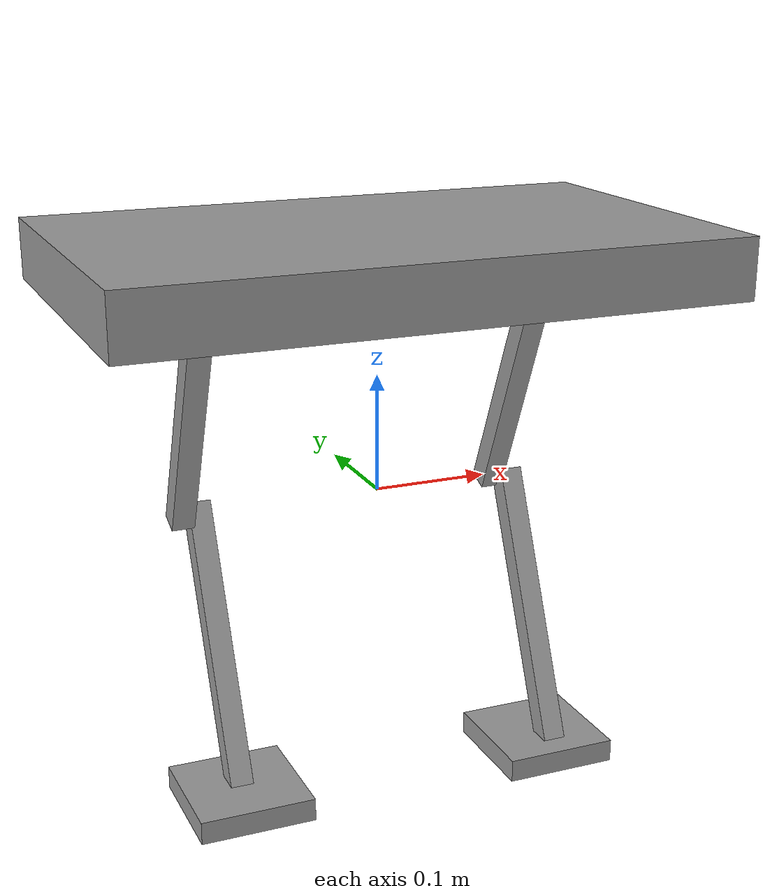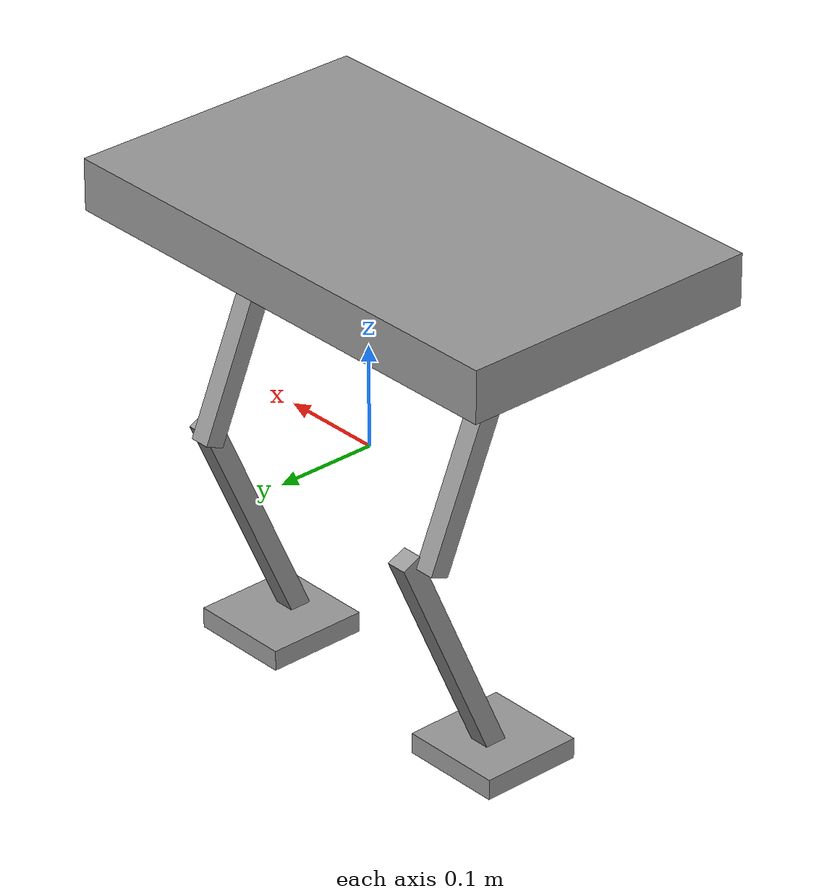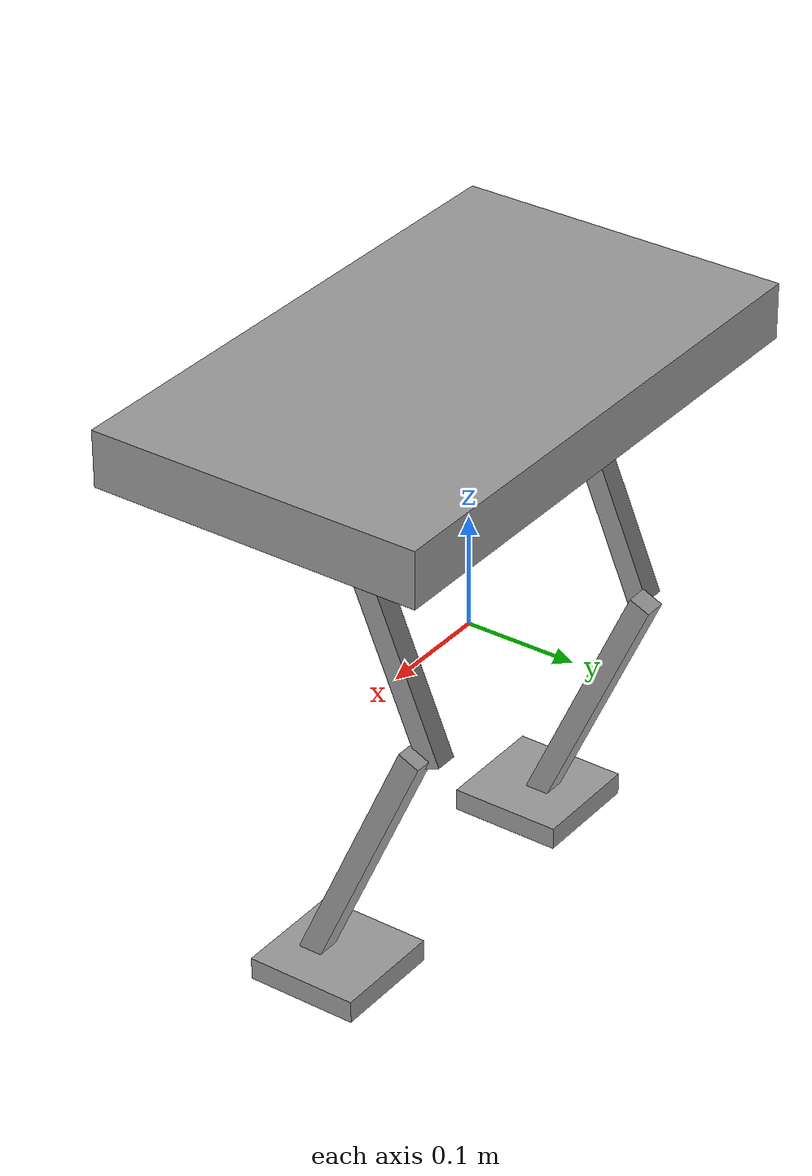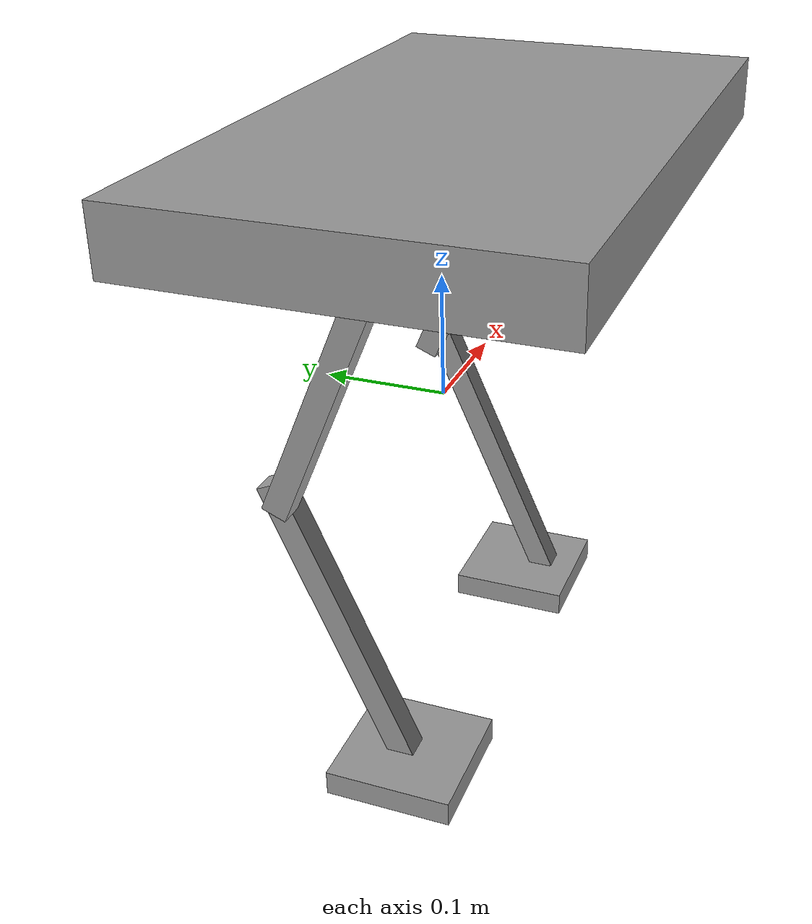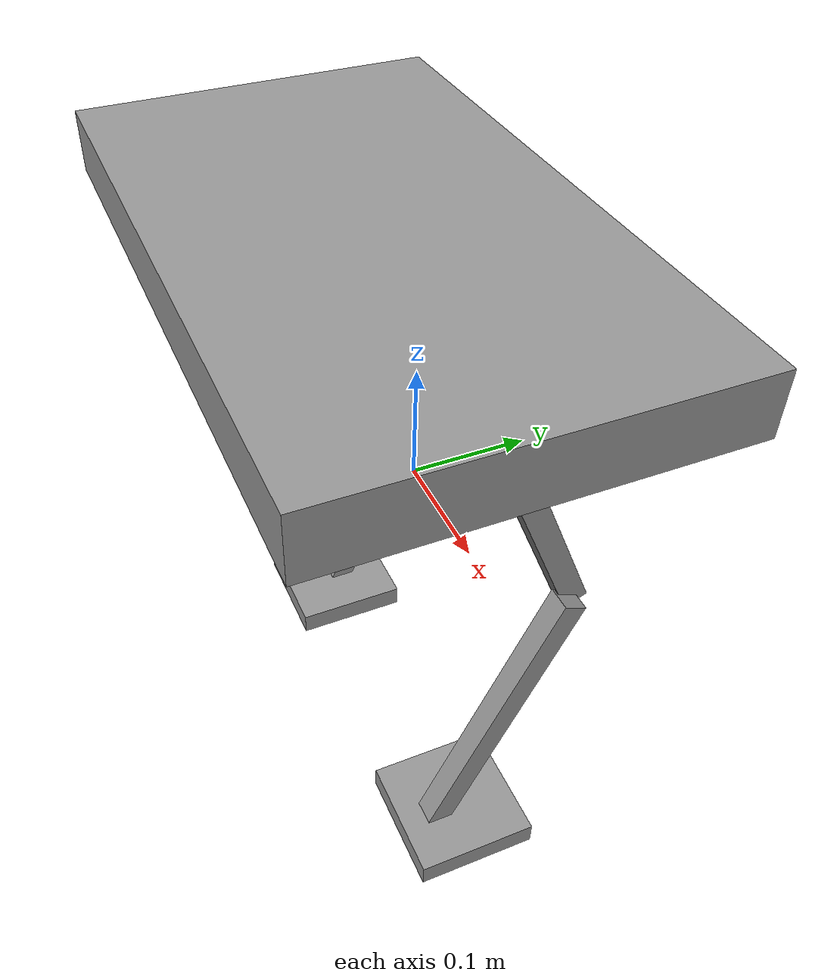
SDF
<?xml version='1.0'?>
<sdf version='1.7'>
  <model name='humanoidRobot'>
    <link name='link_0'>
      <inertial>
        <mass>1</mass>
        <inertia>
          <ixx>0.166667</ixx>
          <ixy>0</ixy>
          <ixz>0</ixz>
          <iyy>0.166667</iyy>
          <iyz>0</iyz>
          <izz>0.166667</izz>
        </inertia>
        <pose>0 0 0 0 -0 0</pose>
      </inertial>
      <pose>-0.013681 -0.03226 0.204424 0 -0 0</pose>
      <gravity>1</gravity>
      <self_collide>0</self_collide>
      <kinematic>0</kinematic>
      <enable_wind>0</enable_wind>
      <visual name='visual'>
        <pose>0 0 0 0 -0 0</pose>
        <geometry>
          <box>
            <size>0.5 0.3 0.05</size>
          </box>
        </geometry>
        <material>
          <lighting>1</lighting>
          <script>
            <uri>file://media/materials/scripts/gazebo.material</uri>
            <name>Gazebo/Grey</name>
          </script>
          <shader type='pixel'>
            <normal_map>__default__</normal_map>
          </shader>
          <ambient>0.3 0.3 0.3 1</ambient>
          <diffuse>0.7 0.7 0.7 1</diffuse>
          <specular>0.01 0.01 0.01 1</specular>
          <emissive>0 0 0 1</emissive>
        </material>
        <transparency>0</transparency>
        <cast_shadows>1</cast_shadows>
      </visual>
      <collision name='collision'>
        <laser_retro>0</laser_retro>
        <max_contacts>10</max_contacts>
        <pose>0 0 0 0 -0 0</pose>
        <geometry>
          <box>
            <size>0.5 0.3 0.02</size>
          </box>
        </geometry>
        <surface>
          <friction>
            <ode>
              <mu>1</mu>
              <mu2>1</mu2>
              <fdir1>0 0 0</fdir1>
              <slip1>0</slip1>
              <slip2>0</slip2>
            </ode>
            <torsional>
              <coefficient>1</coefficient>
              <patch_radius>0</patch_radius>
              <surface_radius>0</surface_radius>
              <use_patch_radius>1</use_patch_radius>
              <ode>
                <slip>0</slip>
              </ode>
            </torsional>
          </friction>
          <bounce>
            <restitution_coefficient>0</restitution_coefficient>
            <threshold>1e+06</threshold>
          </bounce>
          <contact>
            <collide_without_contact>0</collide_without_contact>
            <collide_without_contact_bitmask>1</collide_without_contact_bitmask>
            <collide_bitmask>1</collide_bitmask>
            <ode>
              <soft_cfm>0</soft_cfm>
              <soft_erp>0.2</soft_erp>
              <kp>1e+13</kp>
              <kd>1</kd>
              <max_vel>0.01</max_vel>
              <min_depth>0</min_depth>
            </ode>
            <bullet>
              <split_impulse>1</split_impulse>
              <split_impulse_penetration_threshold>-0.01</split_impulse_penetration_threshold>
              <soft_cfm>0</soft_cfm>
              <soft_erp>0.2</soft_erp>
              <kp>1e+13</kp>
              <kd>1</kd>
            </bullet>
          </contact>
        </surface>
      </collision>
    </link>
    <link name='link_1'>
      <inertial>
        <mass>1</mass>
        <inertia>
          <ixx>0.166667</ixx>
          <ixy>0</ixy>
          <ixz>0</ixz>
          <iyy>0.166667</iyy>
          <iyz>0</iyz>
          <izz>0.166667</izz>
        </inertia>
        <pose>0 0 0 0 -0 0</pose>
      </inertial>
      <pose>0.138675 -0.024286 0.185616 0.399501 -0 0</pose>
      <gravity>1</gravity>
      <self_collide>0</self_collide>
      <kinematic>0</kinematic>
      <enable_wind>0</enable_wind>
      <visual name='visual'>
        <pose>0 0 -0.11 0 -0 0</pose>
        <geometry>
          <box>
            <size>0.02 0.02 0.25</size>
          </box>
        </geometry>
        <material>
          <lighting>1</lighting>
          <script>
            <uri>file://media/materials/scripts/gazebo.material</uri>
            <name>Gazebo/Grey</name>
          </script>
          <shader type='pixel'>
            <normal_map>__default__</normal_map>
          </shader>
          <ambient>0.3 0.3 0.3 1</ambient>
          <diffuse>0.7 0.7 0.7 1</diffuse>
          <specular>0.01 0.01 0.01 1</specular>
          <emissive>0 0 0 1</emissive>
        </material>
        <transparency>0</transparency>
        <cast_shadows>1</cast_shadows>
      </visual>
      <collision name='collision'>
        <laser_retro>0</laser_retro>
        <max_contacts>10</max_contacts>
        <pose>0 0 -0.11 0 -0 0</pose>
        <geometry>
          <box>
            <size>0.02 0.02 0.25</size>
          </box>
        </geometry>
        <surface>
          <friction>
            <ode>
              <mu>1</mu>
              <mu2>1</mu2>
              <fdir1>0 0 0</fdir1>
              <slip1>0</slip1>
              <slip2>0</slip2>
            </ode>
            <torsional>
              <coefficient>1</coefficient>
              <patch_radius>0</patch_radius>
              <surface_radius>0</surface_radius>
              <use_patch_radius>1</use_patch_radius>
              <ode>
                <slip>0</slip>
              </ode>
            </torsional>
          </friction>
          <bounce>
            <restitution_coefficient>0</restitution_coefficient>
            <threshold>1e+06</threshold>
          </bounce>
          <contact>
            <collide_without_contact>0</collide_without_contact>
            <collide_without_contact_bitmask>1</collide_without_contact_bitmask>
            <collide_bitmask>1</collide_bitmask>
            <ode>
              <soft_cfm>0</soft_cfm>
              <soft_erp>0.2</soft_erp>
              <kp>1e+13</kp>
              <kd>1</kd>
              <max_vel>0.01</max_vel>
              <min_depth>0</min_depth>
            </ode>
            <bullet>
              <split_impulse>1</split_impulse>
              <split_impulse_penetration_threshold>-0.01</split_impulse_penetration_threshold>
              <soft_cfm>0</soft_cfm>
              <soft_erp>0.2</soft_erp>
              <kp>1e+13</kp>
              <kd>1</kd>
            </bullet>
          </contact>
        </surface>
      </collision>
    </link>
    <link name='link_1_clone'>
      <inertial>
        <mass>1</mass>
        <inertia>
          <ixx>0.166667</ixx>
          <ixy>0</ixy>
          <ixz>0</ixz>
          <iyy>0.166667</iyy>
          <iyz>0</iyz>
          <izz>0.166667</izz>
        </inertia>
        <pose>0 0 0 0 -0 0</pose>
      </inertial>
      <pose>0.153036 0.05166 -0.034143 -0.417344 0 0</pose>
      <gravity>1</gravity>
      <self_collide>0</self_collide>
      <kinematic>0</kinematic>
      <enable_wind>0</enable_wind>
      <visual name='visual'>
        <pose>0 0 -0.11 0 -0 0</pose>
        <geometry>
          <box>
            <size>0.02 0.02 0.25</size>
          </box>
        </geometry>
        <material>
          <lighting>1</lighting>
          <script>
            <uri>file://media/materials/scripts/gazebo.material</uri>
            <name>Gazebo/Grey</name>
          </script>
          <shader type='pixel'>
            <normal_map>__default__</normal_map>
          </shader>
          <ambient>0.3 0.3 0.3 1</ambient>
          <diffuse>0.7 0.7 0.7 1</diffuse>
          <specular>0.01 0.01 0.01 1</specular>
          <emissive>0 0 0 1</emissive>
        </material>
        <transparency>0</transparency>
        <cast_shadows>1</cast_shadows>
      </visual>
      <collision name='collision'>
        <laser_retro>0</laser_retro>
        <max_contacts>10</max_contacts>
        <pose>0 0 -0.11 0 -0 0</pose>
        <geometry>
          <box>
            <size>0.02 0.02 0.25</size>
          </box>
        </geometry>
        <surface>
          <friction>
            <ode>
              <mu>1</mu>
              <mu2>1</mu2>
              <fdir1>0 0 0</fdir1>
              <slip1>0</slip1>
              <slip2>0</slip2>
            </ode>
            <torsional>
              <coefficient>1</coefficient>
              <patch_radius>0</patch_radius>
              <surface_radius>0</surface_radius>
              <use_patch_radius>1</use_patch_radius>
              <ode>
                <slip>0</slip>
              </ode>
            </torsional>
          </friction>
          <bounce>
            <restitution_coefficient>0</restitution_coefficient>
            <threshold>1e+06</threshold>
          </bounce>
          <contact>
            <collide_without_contact>0</collide_without_contact>
            <collide_without_contact_bitmask>1</collide_without_contact_bitmask>
            <collide_bitmask>1</collide_bitmask>
            <ode>
              <soft_cfm>0</soft_cfm>
              <soft_erp>0.2</soft_erp>
              <kp>1e+13</kp>
              <kd>1</kd>
              <max_vel>0.01</max_vel>
              <min_depth>0</min_depth>
            </ode>
            <bullet>
              <split_impulse>1</split_impulse>
              <split_impulse_penetration_threshold>-0.01</split_impulse_penetration_threshold>
              <soft_cfm>0</soft_cfm>
              <soft_erp>0.2</soft_erp>
              <kp>1e+13</kp>
              <kd>1</kd>
            </bullet>
          </contact>
        </surface>
      </collision>
    </link>
    <link name='link_1_clone_0'>
      <inertial>
        <mass>1</mass>
        <inertia>
          <ixx>0.166667</ixx>
          <ixy>0</ixy>
          <ixz>0</ixz>
          <iyy>0.166667</iyy>
          <iyz>0</iyz>
          <izz>0.166667</izz>
        </inertia>
        <pose>0 0 0 0 -0 0</pose>
      </inertial>
      <pose>-0.154988 -0.02403 0.185616 0.399501 -0 0</pose>
      <gravity>1</gravity>
      <self_collide>0</self_collide>
      <kinematic>0</kinematic>
      <enable_wind>0</enable_wind>
      <visual name='visual'>
        <pose>0 0 -0.11 0 -0 0</pose>
        <geometry>
          <box>
            <size>0.02 0.02 0.25</size>
          </box>
        </geometry>
        <material>
          <lighting>1</lighting>
          <script>
            <uri>file://media/materials/scripts/gazebo.material</uri>
            <name>Gazebo/Grey</name>
          </script>
          <shader type='pixel'>
            <normal_map>__default__</normal_map>
          </shader>
          <ambient>0.3 0.3 0.3 1</ambient>
          <diffuse>0.7 0.7 0.7 1</diffuse>
          <specular>0.01 0.01 0.01 1</specular>
          <emissive>0 0 0 1</emissive>
        </material>
        <transparency>0</transparency>
        <cast_shadows>1</cast_shadows>
      </visual>
      <collision name='collision'>
        <laser_retro>0</laser_retro>
        <max_contacts>10</max_contacts>
        <pose>0 0 -0.11 0 -0 0</pose>
        <geometry>
          <box>
            <size>0.02 0.02 0.25</size>
          </box>
        </geometry>
        <surface>
          <friction>
            <ode>
              <mu>1</mu>
              <mu2>1</mu2>
              <fdir1>0 0 0</fdir1>
              <slip1>0</slip1>
              <slip2>0</slip2>
            </ode>
            <torsional>
              <coefficient>1</coefficient>
              <patch_radius>0</patch_radius>
              <surface_radius>0</surface_radius>
              <use_patch_radius>1</use_patch_radius>
              <ode>
                <slip>0</slip>
              </ode>
            </torsional>
          </friction>
          <bounce>
            <restitution_coefficient>0</restitution_coefficient>
            <threshold>1e+06</threshold>
          </bounce>
          <contact>
            <collide_without_contact>0</collide_without_contact>
            <collide_without_contact_bitmask>1</collide_without_contact_bitmask>
            <collide_bitmask>1</collide_bitmask>
            <ode>
              <soft_cfm>0</soft_cfm>
              <soft_erp>0.2</soft_erp>
              <kp>1e+13</kp>
              <kd>1</kd>
              <max_vel>0.01</max_vel>
              <min_depth>0</min_depth>
            </ode>
            <bullet>
              <split_impulse>1</split_impulse>
              <split_impulse_penetration_threshold>-0.01</split_impulse_penetration_threshold>
              <soft_cfm>0</soft_cfm>
              <soft_erp>0.2</soft_erp>
              <kp>1e+13</kp>
              <kd>1</kd>
            </bullet>
          </contact>
        </surface>
      </collision>
    </link>
    <link name='link_1_clone_clone'>
      <inertial>
        <mass>1</mass>
        <inertia>
          <ixx>0.166667</ixx>
          <ixy>0</ixy>
          <ixz>0</ixz>
          <iyy>0.166667</iyy>
          <iyz>0</iyz>
          <izz>0.166667</izz>
        </inertia>
        <pose>0 0 0 0 -0 0</pose>
      </inertial>
      <pose>-0.136141 0.07538 -0.034143 -0.417344 0 0</pose>
      <gravity>1</gravity>
      <self_collide>0</self_collide>
      <kinematic>0</kinematic>
      <enable_wind>0</enable_wind>
      <visual name='visual'>
        <pose>0 0 -0.11 0 -0 0</pose>
        <geometry>
          <box>
            <size>0.02 0.02 0.25</size>
          </box>
        </geometry>
        <material>
          <lighting>1</lighting>
          <script>
            <uri>file://media/materials/scripts/gazebo.material</uri>
            <name>Gazebo/Grey</name>
          </script>
          <shader type='pixel'>
            <normal_map>__default__</normal_map>
          </shader>
          <ambient>0.3 0.3 0.3 1</ambient>
          <diffuse>0.7 0.7 0.7 1</diffuse>
          <specular>0.01 0.01 0.01 1</specular>
          <emissive>0 0 0 1</emissive>
        </material>
        <transparency>0</transparency>
        <cast_shadows>1</cast_shadows>
      </visual>
      <collision name='collision'>
        <laser_retro>0</laser_retro>
        <max_contacts>10</max_contacts>
        <pose>0 0 -0.11 0 -0 0</pose>
        <geometry>
          <box>
            <size>0.02 0.02 0.25</size>
          </box>
        </geometry>
        <surface>
          <friction>
            <ode>
              <mu>1</mu>
              <mu2>1</mu2>
              <fdir1>0 0 0</fdir1>
              <slip1>0</slip1>
              <slip2>0</slip2>
            </ode>
            <torsional>
              <coefficient>1</coefficient>
              <patch_radius>0</patch_radius>
              <surface_radius>0</surface_radius>
              <use_patch_radius>1</use_patch_radius>
              <ode>
                <slip>0</slip>
              </ode>
            </torsional>
          </friction>
          <bounce>
            <restitution_coefficient>0</restitution_coefficient>
            <threshold>1e+06</threshold>
          </bounce>
          <contact>
            <collide_without_contact>0</collide_without_contact>
            <collide_without_contact_bitmask>1</collide_without_contact_bitmask>
            <collide_bitmask>1</collide_bitmask>
            <ode>
              <soft_cfm>0</soft_cfm>
              <soft_erp>0.2</soft_erp>
              <kp>1e+13</kp>
              <kd>1</kd>
              <max_vel>0.01</max_vel>
              <min_depth>0</min_depth>
            </ode>
            <bullet>
              <split_impulse>1</split_impulse>
              <split_impulse_penetration_threshold>-0.01</split_impulse_penetration_threshold>
              <soft_cfm>0</soft_cfm>
              <soft_erp>0.2</soft_erp>
              <kp>1e+13</kp>
              <kd>1</kd>
            </bullet>
          </contact>
        </surface>
      </collision>
    </link>
    <link name='link_2'>
      <inertial>
        <mass>1</mass>
        <inertia>
          <ixx>0.166667</ixx>
          <ixy>0</ixy>
          <ixz>0</ixz>
          <iyy>0.166667</iyy>
          <iyz>0</iyz>
          <izz>0.166667</izz>
        </inertia>
        <pose>0 0 0 0 -0 0</pose>
      </inertial>
      <pose>0.149239 -0.024175 -0.255408 0 -0 0</pose>
      <gravity>1</gravity>
      <self_collide>0</self_collide>
      <kinematic>0</kinematic>
      <enable_wind>0</enable_wind>
      <visual name='visual'>
        <pose>0 0 0 0 -0 0</pose>
        <geometry>
          <box>
            <size>0.1 0.1 0.02</size>
          </box>
        </geometry>
        <material>
          <lighting>1</lighting>
          <script>
            <uri>file://media/materials/scripts/gazebo.material</uri>
            <name>Gazebo/Grey</name>
          </script>
          <shader type='pixel'>
            <normal_map>__default__</normal_map>
          </shader>
          <ambient>0.3 0.3 0.3 1</ambient>
          <diffuse>0.7 0.7 0.7 1</diffuse>
          <specular>0.01 0.01 0.01 1</specular>
          <emissive>0 0 0 1</emissive>
        </material>
        <transparency>0</transparency>
        <cast_shadows>1</cast_shadows>
      </visual>
      <collision name='collision'>
        <laser_retro>0</laser_retro>
        <max_contacts>10</max_contacts>
        <pose>0 0 0 0 -0 0</pose>
        <geometry>
          <box>
            <size>0.1 0.1 0.02</size>
          </box>
        </geometry>
        <surface>
          <friction>
            <ode>
              <mu>1</mu>
              <mu2>1</mu2>
              <fdir1>0 0 0</fdir1>
              <slip1>0</slip1>
              <slip2>0</slip2>
            </ode>
            <torsional>
              <coefficient>1</coefficient>
              <patch_radius>0</patch_radius>
              <surface_radius>0</surface_radius>
              <use_patch_radius>1</use_patch_radius>
              <ode>
                <slip>0</slip>
              </ode>
            </torsional>
          </friction>
          <bounce>
            <restitution_coefficient>0</restitution_coefficient>
            <threshold>1e+06</threshold>
          </bounce>
          <contact>
            <collide_without_contact>0</collide_without_contact>
            <collide_without_contact_bitmask>1</collide_without_contact_bitmask>
            <collide_bitmask>1</collide_bitmask>
            <ode>
              <soft_cfm>0</soft_cfm>
              <soft_erp>0.2</soft_erp>
              <kp>1e+13</kp>
              <kd>1</kd>
              <max_vel>0.01</max_vel>
              <min_depth>0</min_depth>
            </ode>
            <bullet>
              <split_impulse>1</split_impulse>
              <split_impulse_penetration_threshold>-0.01</split_impulse_penetration_threshold>
              <soft_cfm>0</soft_cfm>
              <soft_erp>0.2</soft_erp>
              <kp>1e+13</kp>
              <kd>1</kd>
            </bullet>
          </contact>
        </surface>
      </collision>
    </link>
    <link name='link_2_clone'>
      <inertial>
        <mass>1</mass>
        <inertia>
          <ixx>0.166667</ixx>
          <ixy>0</ixy>
          <ixz>0</ixz>
          <iyy>0.166667</iyy>
          <iyz>0</iyz>
          <izz>0.166667</izz>
        </inertia>
        <pose>0 0 0 0 -0 0</pose>
      </inertial>
      <pose>-0.136141 -0.022286 -0.251962 0 -0 0</pose>
      <gravity>1</gravity>
      <self_collide>0</self_collide>
      <kinematic>0</kinematic>
      <enable_wind>0</enable_wind>
      <visual name='visual'>
        <pose>0 0 0 0 -0 0</pose>
        <geometry>
          <box>
            <size>0.1 0.1 0.02</size>
          </box>
        </geometry>
        <material>
          <lighting>1</lighting>
          <script>
            <uri>file://media/materials/scripts/gazebo.material</uri>
            <name>Gazebo/Grey</name>
          </script>
          <shader type='pixel'>
            <normal_map>__default__</normal_map>
          </shader>
          <ambient>0.3 0.3 0.3 1</ambient>
          <diffuse>0.7 0.7 0.7 1</diffuse>
          <specular>0.01 0.01 0.01 1</specular>
          <emissive>0 0 0 1</emissive>
        </material>
        <transparency>0</transparency>
        <cast_shadows>1</cast_shadows>
      </visual>
      <collision name='collision'>
        <laser_retro>0</laser_retro>
        <max_contacts>10</max_contacts>
        <pose>0 0 0 0 -0 0</pose>
        <geometry>
          <box>
            <size>0.1 0.1 0.02</size>
          </box>
        </geometry>
        <surface>
          <friction>
            <ode>
              <mu>1</mu>
              <mu2>1</mu2>
              <fdir1>0 0 0</fdir1>
              <slip1>0</slip1>
              <slip2>0</slip2>
            </ode>
            <torsional>
              <coefficient>1</coefficient>
              <patch_radius>0</patch_radius>
              <surface_radius>0</surface_radius>
              <use_patch_radius>1</use_patch_radius>
              <ode>
                <slip>0</slip>
              </ode>
            </torsional>
          </friction>
          <bounce>
            <restitution_coefficient>0</restitution_coefficient>
            <threshold>1e+06</threshold>
          </bounce>
          <contact>
            <collide_without_contact>0</collide_without_contact>
            <collide_without_contact_bitmask>1</collide_without_contact_bitmask>
            <collide_bitmask>1</collide_bitmask>
            <ode>
              <soft_cfm>0</soft_cfm>
              <soft_erp>0.2</soft_erp>
              <kp>1e+13</kp>
              <kd>1</kd>
              <max_vel>0.01</max_vel>
              <min_depth>0</min_depth>
            </ode>
            <bullet>
              <split_impulse>1</split_impulse>
              <split_impulse_penetration_threshold>-0.01</split_impulse_penetration_threshold>
              <soft_cfm>0</soft_cfm>
              <soft_erp>0.2</soft_erp>
              <kp>1e+13</kp>
              <kd>1</kd>
            </bullet>
          </contact>
        </surface>
      </collision>
    </link>
    <joint name='link_0_JOINT_0' type='revolute'>
      <parent>link_0</parent>
      <child>link_1</child>
      <pose>0 0 0 0 -0 0</pose>
      <axis>
        <xyz>1 0 0</xyz>
        <limit>
          <lower>-1.79769e+308</lower>
          <upper>1.79769e+308</upper>
          <effort>-1</effort>
          <velocity>-1</velocity>
        </limit>
        <dynamics>
          <spring_reference>0</spring_reference>
          <spring_stiffness>0</spring_stiffness>
          <damping>0</damping>
        </dynamics>
      </axis>
      <physics>
        <ode>
          <limit>
            <cfm>0</cfm>
            <erp>0.2</erp>
          </limit>
          <suspension>
            <cfm>0</cfm>
            <erp>0.2</erp>
          </suspension>
        </ode>
      </physics>
    </joint>
    <joint name='link_0_JOINT_3' type='revolute'>
      <parent>link_0</parent>
      <child>link_1_clone_0</child>
      <pose>0 0 0 0 -0 0</pose>
      <axis>
        <xyz>1 0 0</xyz>
        <limit>
          <lower>-1.79769e+308</lower>
          <upper>1.79769e+308</upper>
          <effort>-1</effort>
          <velocity>-1</velocity>
        </limit>
        <dynamics>
          <spring_reference>0</spring_reference>
          <spring_stiffness>0</spring_stiffness>
          <damping>0</damping>
        </dynamics>
      </axis>
      <physics>
        <ode>
          <limit>
            <cfm>0</cfm>
            <erp>0.2</erp>
          </limit>
          <suspension>
            <cfm>0</cfm>
            <erp>0.2</erp>
          </suspension>
        </ode>
      </physics>
    </joint>
    <joint name='link_1_JOINT_1' type='revolute'>
      <parent>link_1</parent>
      <child>link_1_clone</child>
      <pose>0 0 0 0 -0 0</pose>
      <axis>
        <xyz>1 0 0</xyz>
        <limit>
          <lower>-1.79769e+308</lower>
          <upper>1.79769e+308</upper>
          <effort>-1</effort>
          <velocity>-1</velocity>
        </limit>
        <dynamics>
          <spring_reference>0</spring_reference>
          <spring_stiffness>0</spring_stiffness>
          <damping>0</damping>
        </dynamics>
      </axis>
      <physics>
        <ode>
          <limit>
            <cfm>0</cfm>
            <erp>0.2</erp>
          </limit>
          <suspension>
            <cfm>0</cfm>
            <erp>0.2</erp>
          </suspension>
        </ode>
      </physics>
    </joint>
    <joint name='link_1_clone_0_JOINT_4' type='revolute'>
      <parent>link_1_clone_0</parent>
      <child>link_1_clone_clone</child>
      <pose>0 0 0 0 -0 0</pose>
      <axis>
        <xyz>1 0 0</xyz>
        <limit>
          <lower>-1.79769e+308</lower>
          <upper>1.79769e+308</upper>
          <effort>-1</effort>
          <velocity>-1</velocity>
        </limit>
        <dynamics>
          <spring_reference>0</spring_reference>
          <spring_stiffness>0</spring_stiffness>
          <damping>0</damping>
        </dynamics>
      </axis>
      <physics>
        <ode>
          <limit>
            <cfm>0</cfm>
            <erp>0.2</erp>
          </limit>
          <suspension>
            <cfm>0</cfm>
            <erp>0.2</erp>
          </suspension>
        </ode>
      </physics>
    </joint>
    <joint name='link_1_clone_JOINT_2' type='revolute'>
      <parent>link_1_clone</parent>
      <child>link_2</child>
      <pose>0 0 0 0 -0 0</pose>
      <axis>
        <xyz>1 0 0</xyz>
        <limit>
          <lower>-1.79769e+308</lower>
          <upper>1.79769e+308</upper>
          <effort>-1</effort>
          <velocity>-1</velocity>
        </limit>
        <dynamics>
          <spring_reference>0</spring_reference>
          <spring_stiffness>0</spring_stiffness>
          <damping>0</damping>
        </dynamics>
      </axis>
      <physics>
        <ode>
          <limit>
            <cfm>0</cfm>
            <erp>0.2</erp>
          </limit>
          <suspension>
            <cfm>0</cfm>
            <erp>0.2</erp>
          </suspension>
        </ode>
      </physics>
    </joint>
    <joint name='link_1_clone_clone_JOINT_5' type='revolute'>
      <parent>link_1_clone_clone</parent>
      <child>link_2_clone</child>
      <pose>0 0 0 0 -0 0</pose>
      <axis>
        <xyz>1 0 0</xyz>
        <limit>
          <lower>-1.79769e+308</lower>
          <upper>1.79769e+308</upper>
          <effort>-1</effort>
          <velocity>-1</velocity>
        </limit>
        <dynamics>
          <spring_reference>0</spring_reference>
          <spring_stiffness>0</spring_stiffness>
          <damping>0</damping>
        </dynamics>
      </axis>
      <physics>
        <ode>
          <limit>
            <cfm>0</cfm>
            <erp>0.2</erp>
          </limit>
          <suspension>
            <cfm>0</cfm>
            <erp>0.2</erp>
          </suspension>
        </ode>
      </physics>
    </joint>
    <static>0</static>
    <allow_auto_disable>1</allow_auto_disable>
  </model>
</sdf>
